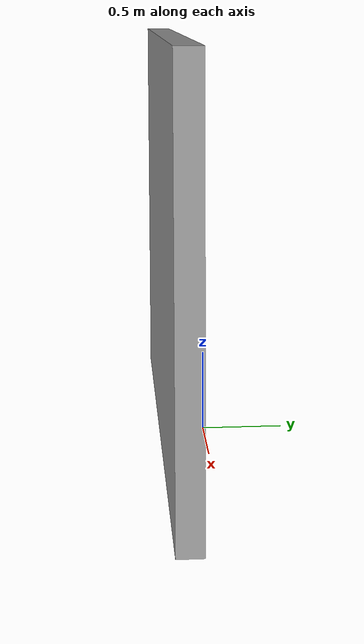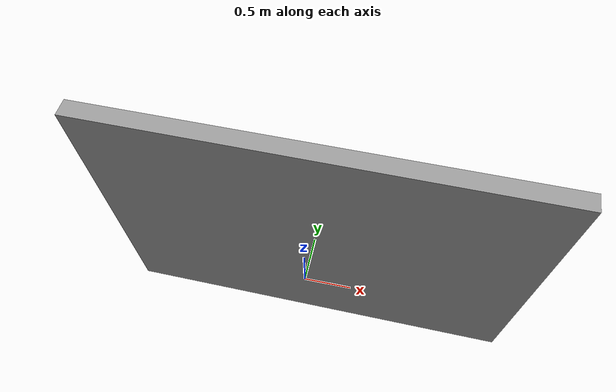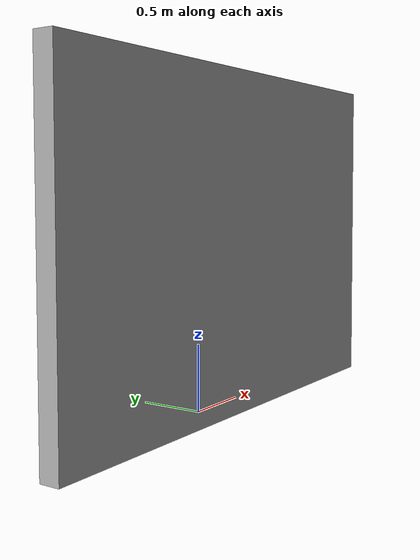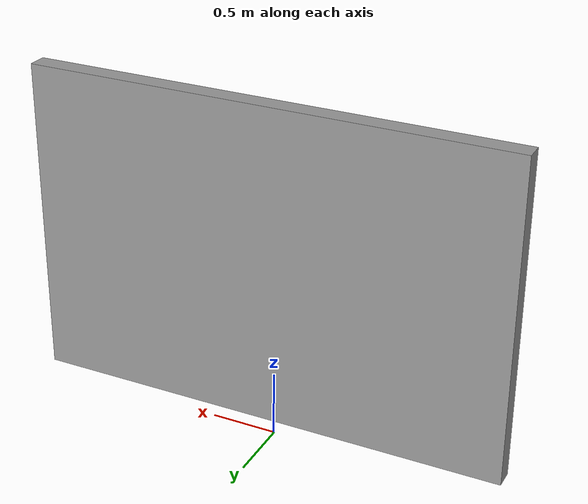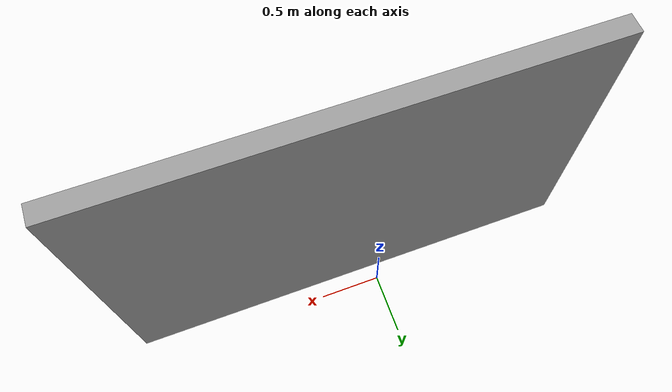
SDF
<?xml version='1.0'?>
<sdf version='1.6'>
  <model name='Untitled'>
    <pose frame=''>0.167452 -0.205218 0 0 -0 0</pose>
    <link name='Wall_13'>
      <collision name='Wall_13_Collision'>
        <geometry>
          <box>
            <size>3.75 0.15 2.5</size>
          </box>
        </geometry>
        <pose frame=''>0 0 1.25 0 -0 0</pose>
      </collision>
      <visual name='Wall_13_Visual'>
        <pose frame=''>0 0 1.25 0 -0 0</pose>
        <geometry>
          <box>
            <size>3.75 0.15 2.5</size>
          </box>
        </geometry>
        <material>
          <script>
            <uri>file://media/materials/scripts/gazebo.material</uri>
            <name>Gazebo/Grey</name>
          </script>
          <ambient>1 1 1 1</ambient>
        </material>
        <meta>
          <layer>0</layer>
        </meta>
      </visual>
      <pose frame=''>0 0 0 0 -0 3.14159</pose>
    </link>
    <static>1</static>
  </model>
</sdf>
